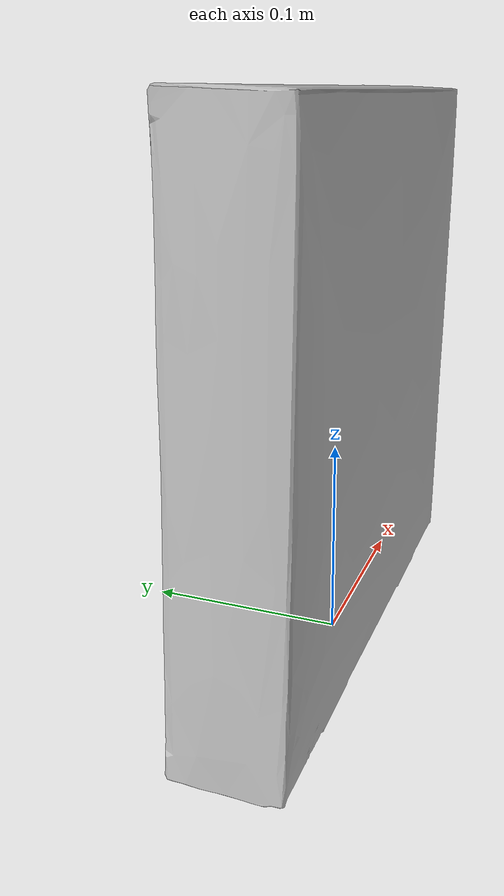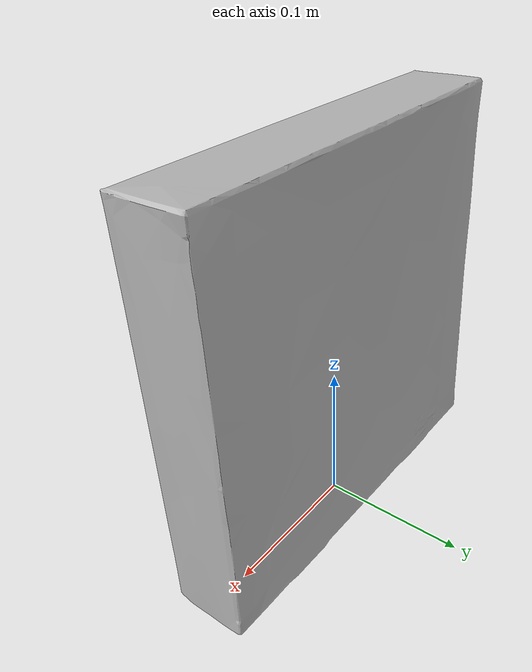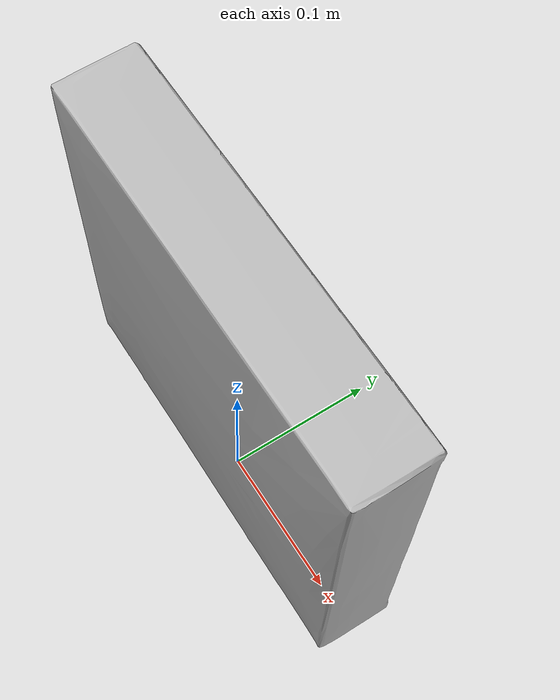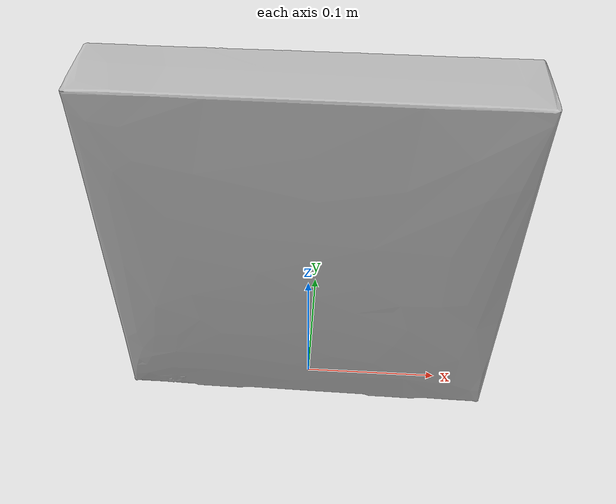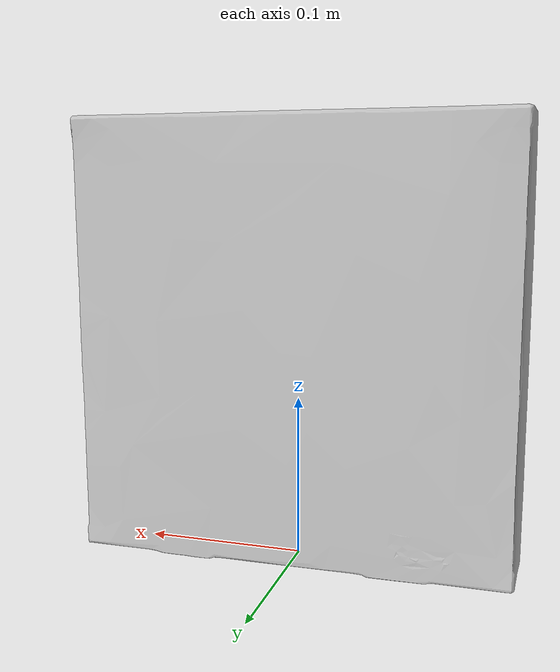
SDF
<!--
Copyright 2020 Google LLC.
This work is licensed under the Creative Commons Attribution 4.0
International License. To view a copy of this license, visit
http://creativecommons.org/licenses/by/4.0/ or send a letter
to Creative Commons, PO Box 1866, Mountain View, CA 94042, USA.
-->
<?xml version="1.0" ?>
<sdf version="1.6">
  <model name="Frozen_Olafs_In_Trouble_PopOMatic_Game">
    <link name="link_0">
      <visual name="visual">
        <geometry>
          <mesh>
            <uri>meshes/model.obj</uri>
          </mesh>
        </geometry>
      </visual>
      <collision name="collision_0">
        <geometry>
          <mesh>
            <uri>meshes/model.obj</uri>
          </mesh>
        </geometry>
      </collision>
    </link>
  </model>
</sdf>
